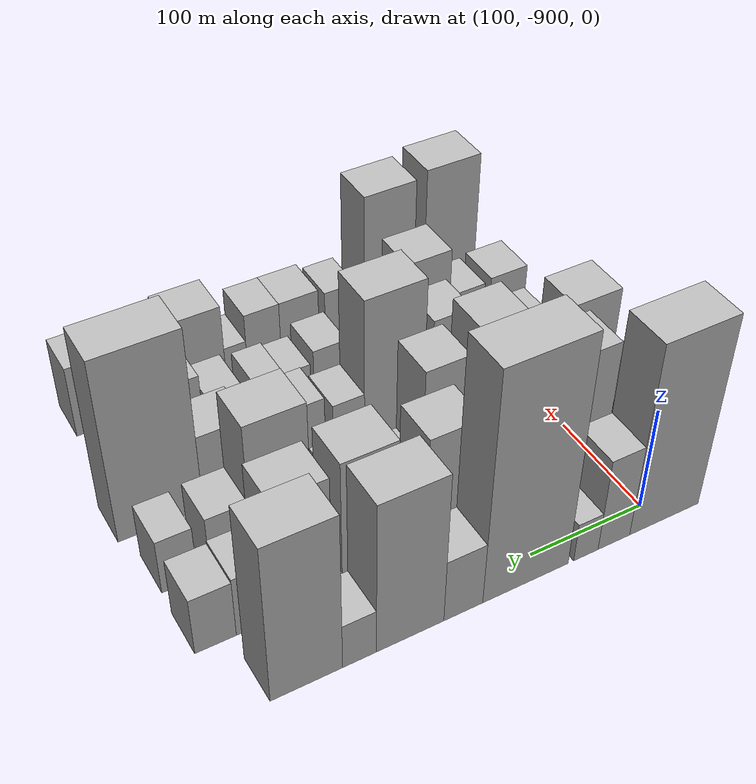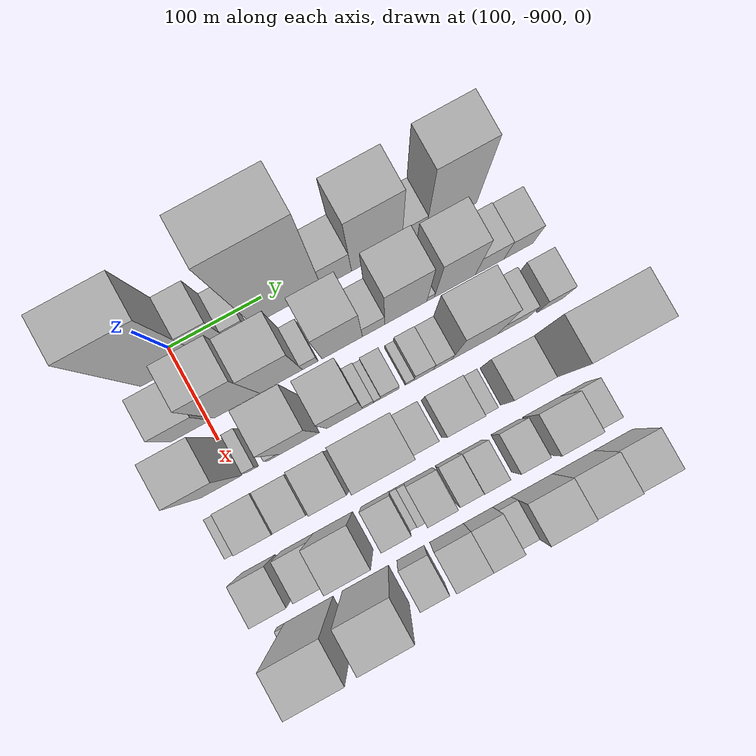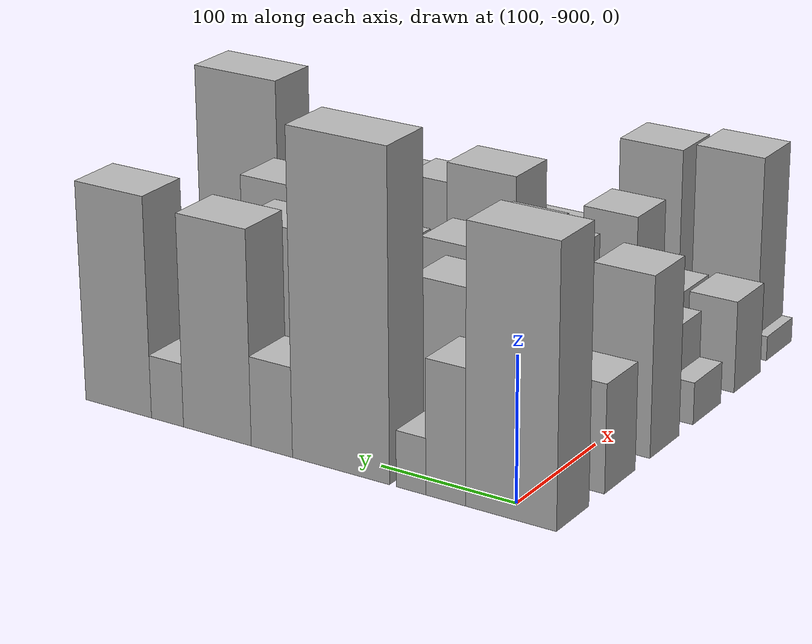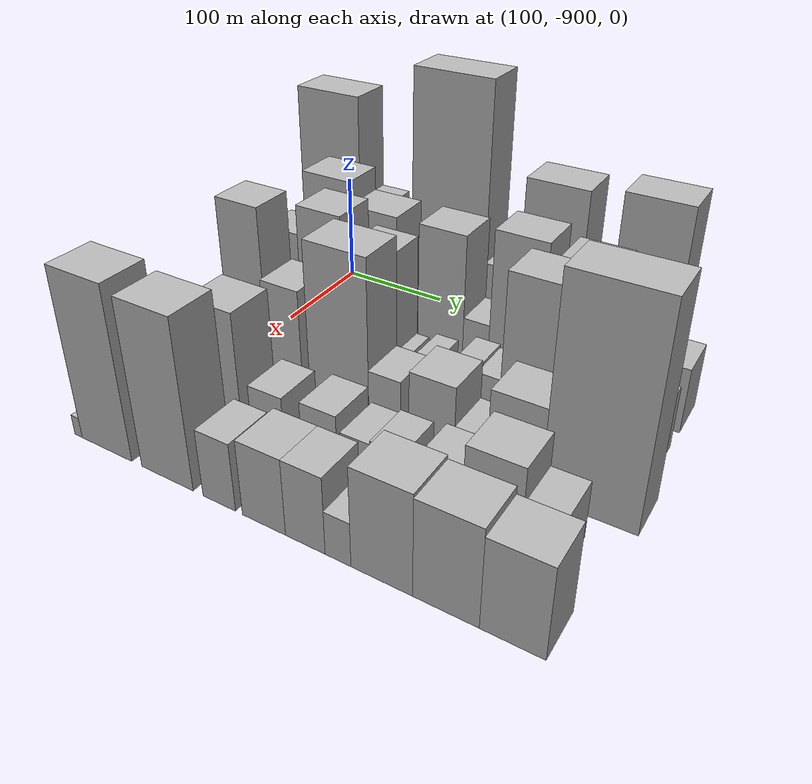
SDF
<sdf version="1.6">
 <world name="default">
  <model name="building_1">
   <static>1</static>
   <pose>100.0000 -907.5828 0 0.000000 0.000000 0.000000</pose>
   <link name="link">
    <pose>0 0 94.50 0 0 0</pose>
    <collision name="collision"><geometry><box><size>40.0000 64.8345 189.0000</size></box></geometry></collision>
    <visual name="visual">
     <cast_shadows>0</cast_shadows>
     <geometry><box><size>40.0000 64.8345 189.0000</size></box></geometry>
     <material>
      <script>
       <uri>model://HANNAS_wall/materials/scripts</uri>
       <uri>model://HANNAS_wall/materials/textures</uri>
       <name>vrc/HANNAS_wall</name>
      </script>
     </material>
    </visual>
   </link>
  </model>
  <model name="building_2">
   <static>1</static>
   <pose>100.0000 -860.6660 0 0.000000 0.000000 0.000000</pose>
   <link name="link">
    <pose>0 0 46.50 0 0 0</pose>
    <collision name="collision"><geometry><box><size>40.0000 28.9990 93.0000</size></box></geometry></collision>
    <visual name="visual">
     <cast_shadows>0</cast_shadows>
     <geometry><box><size>40.0000 28.9990 93.0000</size></box></geometry>
     <material>
      <script>
       <uri>model://HANNAS_wall/materials/scripts</uri>
       <uri>model://HANNAS_wall/materials/textures</uri>
       <name>vrc/HANNAS_wall</name>
      </script>
     </material>
    </visual>
   </link>
  </model>
  <model name="building_3">
   <static>1</static>
   <pose>100.0000 -835.2221 0 0.000000 0.000000 0.000000</pose>
   <link name="link">
    <pose>0 0 19.50 0 0 0</pose>
    <collision name="collision"><geometry><box><size>40.0000 21.8888 39.0000</size></box></geometry></collision>
    <visual name="visual">
     <cast_shadows>0</cast_shadows>
     <geometry><box><size>40.0000 21.8888 39.0000</size></box></geometry>
     <material>
      <script>
       <uri>model://HANNAS_wall/materials/scripts</uri>
       <uri>model://HANNAS_wall/materials/textures</uri>
       <name>vrc/HANNAS_wall</name>
      </script>
     </material>
    </visual>
   </link>
  </model>
  <model name="building_4">
   <static>1</static>
   <pose>100.0000 -782.2124 0 0.000000 0.000000 0.000000</pose>
   <link name="link">
    <pose>0 0 112.50 0 0 0</pose>
    <collision name="collision"><geometry><box><size>40.0000 74.1306 225.0000</size></box></geometry></collision>
    <visual name="visual">
     <cast_shadows>0</cast_shadows>
     <geometry><box><size>40.0000 74.1306 225.0000</size></box></geometry>
     <material>
      <script>
       <uri>model://HANNAS_wall/materials/scripts</uri>
       <uri>model://HANNAS_wall/materials/textures</uri>
       <name>vrc/HANNAS_wall</name>
      </script>
     </material>
    </visual>
   </link>
  </model>
  <model name="building_5">
   <static>1</static>
   <pose>100.0000 -728.9283 0 0.000000 0.000000 0.000000</pose>
   <link name="link">
    <pose>0 0 31.50 0 0 0</pose>
    <collision name="collision"><geometry><box><size>40.0000 32.4376 63.0000</size></box></geometry></collision>
    <visual name="visual">
     <cast_shadows>0</cast_shadows>
     <geometry><box><size>40.0000 32.4376 63.0000</size></box></geometry>
     <material>
      <script>
       <uri>model://HANNAS_wall/materials/scripts</uri>
       <uri>model://HANNAS_wall/materials/textures</uri>
       <name>vrc/HANNAS_wall</name>
      </script>
     </material>
    </visual>
   </link>
  </model>
  <model name="building_6">
   <static>1</static>
   <pose>100.0000 -685.4064 0 0.000000 0.000000 0.000000</pose>
   <link name="link">
    <pose>0 0 75.00 0 0 0</pose>
    <collision name="collision"><geometry><box><size>40.0000 54.6061 150.0000</size></box></geometry></collision>
    <visual name="visual">
     <cast_shadows>0</cast_shadows>
     <geometry><box><size>40.0000 54.6061 150.0000</size></box></geometry>
     <material>
      <script>
       <uri>model://HANNAS_wall/materials/scripts</uri>
       <uri>model://HANNAS_wall/materials/textures</uri>
       <name>vrc/HANNAS_wall</name>
      </script>
     </material>
    </visual>
   </link>
  </model>
  <model name="building_7">
   <static>1</static>
   <pose>100.0000 -644.9098 0 0.000000 0.000000 0.000000</pose>
   <link name="link">
    <pose>0 0 22.50 0 0 0</pose>
    <collision name="collision"><geometry><box><size>40.0000 26.3871 45.0000</size></box></geometry></collision>
    <visual name="visual">
     <cast_shadows>0</cast_shadows>
     <geometry><box><size>40.0000 26.3871 45.0000</size></box></geometry>
     <material>
      <script>
       <uri>model://HANNAS_wall/materials/scripts</uri>
       <uri>model://HANNAS_wall/materials/textures</uri>
       <name>vrc/HANNAS_wall</name>
      </script>
     </material>
    </visual>
   </link>
  </model>
  <model name="building_8">
   <static>1</static>
   <pose>100.0000 -604.1394 0 0.000000 0.000000 0.000000</pose>
   <link name="link">
    <pose>0 0 78.00 0 0 0</pose>
    <collision name="collision"><geometry><box><size>40.0000 55.1538 156.0000</size></box></geometry></collision>
    <visual name="visual">
     <cast_shadows>0</cast_shadows>
     <geometry><box><size>40.0000 55.1538 156.0000</size></box></geometry>
     <material>
      <script>
       <uri>model://HANNAS_wall/materials/scripts</uri>
       <uri>model://HANNAS_wall/materials/textures</uri>
       <name>vrc/HANNAS_wall</name>
      </script>
     </material>
    </visual>
   </link>
  </model>
  <model name="building_53">
   <static>1</static>
   <pose>160.0000 -918.6903 0 0.000000 0.000000 0.000000</pose>
   <link name="link">
    <pose>0 0 37.50 0 0 0</pose>
    <collision name="collision"><geometry><box><size>40.0000 42.6194 75.0000</size></box></geometry></collision>
    <visual name="visual">
     <cast_shadows>0</cast_shadows>
     <geometry><box><size>40.0000 42.6194 75.0000</size></box></geometry>
     <material>
      <script>
       <uri>model://HANNAS_wall/materials/scripts</uri>
       <uri>model://HANNAS_wall/materials/textures</uri>
       <name>vrc/HANNAS_wall</name>
      </script>
     </material>
    </visual>
   </link>
  </model>
  <model name="building_54">
   <static>1</static>
   <pose>160.0000 -869.1171 0 0.000000 0.000000 0.000000</pose>
   <link name="link">
    <pose>0 0 69.00 0 0 0</pose>
    <collision name="collision"><geometry><box><size>40.0000 48.5270 138.0000</size></box></geometry></collision>
    <visual name="visual">
     <cast_shadows>0</cast_shadows>
     <geometry><box><size>40.0000 48.5270 138.0000</size></box></geometry>
     <material>
      <script>
       <uri>model://HANNAS_wall/materials/scripts</uri>
       <uri>model://HANNAS_wall/materials/textures</uri>
       <name>vrc/HANNAS_wall</name>
      </script>
     </material>
    </visual>
   </link>
  </model>
  <model name="building_55">
   <static>1</static>
   <pose>160.0000 -821.7327 0 0.000000 0.000000 0.000000</pose>
   <link name="link">
    <pose>0 0 58.50 0 0 0</pose>
    <collision name="collision"><geometry><box><size>40.0000 46.2419 117.0000</size></box></geometry></collision>
    <visual name="visual">
     <cast_shadows>0</cast_shadows>
     <geometry><box><size>40.0000 46.2419 117.0000</size></box></geometry>
     <material>
      <script>
       <uri>model://HANNAS_wall/materials/scripts</uri>
       <uri>model://HANNAS_wall/materials/textures</uri>
       <name>vrc/HANNAS_wall</name>
      </script>
     </material>
    </visual>
   </link>
  </model>
  <model name="building_56">
   <static>1</static>
   <pose>160.0000 -790.0894 0 0.000000 0.000000 0.000000</pose>
   <link name="link">
    <pose>0 0 15.00 0 0 0</pose>
    <collision name="collision"><geometry><box><size>40.0000 17.0447 30.0000</size></box></geometry></collision>
    <visual name="visual">
     <cast_shadows>0</cast_shadows>
     <geometry><box><size>40.0000 17.0447 30.0000</size></box></geometry>
     <material>
      <script>
       <uri>model://HANNAS_wall/materials/scripts</uri>
       <uri>model://HANNAS_wall/materials/textures</uri>
       <name>vrc/HANNAS_wall</name>
      </script>
     </material>
    </visual>
   </link>
  </model>
  <model name="building_57">
   <static>1</static>
   <pose>160.0000 -755.6959 0 0.000000 0.000000 0.000000</pose>
   <link name="link">
    <pose>0 0 58.50 0 0 0</pose>
    <collision name="collision"><geometry><box><size>40.0000 43.7423 117.0000</size></box></geometry></collision>
    <visual name="visual">
     <cast_shadows>0</cast_shadows>
     <geometry><box><size>40.0000 43.7423 117.0000</size></box></geometry>
     <material>
      <script>
       <uri>model://HANNAS_wall/materials/scripts</uri>
       <uri>model://HANNAS_wall/materials/textures</uri>
       <name>vrc/HANNAS_wall</name>
      </script>
     </material>
    </visual>
   </link>
  </model>
  <model name="building_58">
   <static>1</static>
   <pose>160.0000 -721.9213 0 0.000000 0.000000 0.000000</pose>
   <link name="link">
    <pose>0 0 21.00 0 0 0</pose>
    <collision name="collision"><geometry><box><size>40.0000 23.8068 42.0000</size></box></geometry></collision>
    <visual name="visual">
     <cast_shadows>0</cast_shadows>
     <geometry><box><size>40.0000 23.8068 42.0000</size></box></geometry>
     <material>
      <script>
       <uri>model://HANNAS_wall/materials/scripts</uri>
       <uri>model://HANNAS_wall/materials/textures</uri>
       <name>vrc/HANNAS_wall</name>
      </script>
     </material>
    </visual>
   </link>
  </model>
  <model name="building_59">
   <static>1</static>
   <pose>160.0000 -687.0937 0 0.000000 0.000000 0.000000</pose>
   <link name="link">
    <pose>0 0 64.50 0 0 0</pose>
    <collision name="collision"><geometry><box><size>40.0000 45.8484 129.0000</size></box></geometry></collision>
    <visual name="visual">
     <cast_shadows>0</cast_shadows>
     <geometry><box><size>40.0000 45.8484 129.0000</size></box></geometry>
     <material>
      <script>
       <uri>model://HANNAS_wall/materials/scripts</uri>
       <uri>model://HANNAS_wall/materials/textures</uri>
       <name>vrc/HANNAS_wall</name>
      </script>
     </material>
    </visual>
   </link>
  </model>
  <model name="building_60">
   <static>1</static>
   <pose>160.0000 -660.0778 0 0.000000 0.000000 0.000000</pose>
   <link name="link">
    <pose>0 0 9.00 0 0 0</pose>
    <collision name="collision"><geometry><box><size>40.0000 8.1835 18.0000</size></box></geometry></collision>
    <visual name="visual">
     <cast_shadows>0</cast_shadows>
     <geometry><box><size>40.0000 8.1835 18.0000</size></box></geometry>
     <material>
      <script>
       <uri>model://HANNAS_wall/materials/scripts</uri>
       <uri>model://HANNAS_wall/materials/textures</uri>
       <name>vrc/HANNAS_wall</name>
      </script>
     </material>
    </visual>
   </link>
  </model>
  <model name="building_61">
   <static>1</static>
   <pose>160.0000 -633.7092 0 0.000000 0.000000 0.000000</pose>
   <link name="link">
    <pose>0 0 60.00 0 0 0</pose>
    <collision name="collision"><geometry><box><size>40.0000 44.5536 120.0000</size></box></geometry></collision>
    <visual name="visual">
     <cast_shadows>0</cast_shadows>
     <geometry><box><size>40.0000 44.5536 120.0000</size></box></geometry>
     <material>
      <script>
       <uri>model://HANNAS_wall/materials/scripts</uri>
       <uri>model://HANNAS_wall/materials/textures</uri>
       <name>vrc/HANNAS_wall</name>
      </script>
     </material>
    </visual>
   </link>
  </model>
  <model name="building_62">
   <static>1</static>
   <pose>160.0000 -595.7839 0 0.000000 0.000000 0.000000</pose>
   <link name="link">
    <pose>0 0 30.00 0 0 0</pose>
    <collision name="collision"><geometry><box><size>40.0000 31.2971 60.0000</size></box></geometry></collision>
    <visual name="visual">
     <cast_shadows>0</cast_shadows>
     <geometry><box><size>40.0000 31.2971 60.0000</size></box></geometry>
     <material>
      <script>
       <uri>model://HANNAS_wall/materials/scripts</uri>
       <uri>model://HANNAS_wall/materials/textures</uri>
       <name>vrc/HANNAS_wall</name>
      </script>
     </material>
    </visual>
   </link>
  </model>
  <model name="building_63">
   <static>1</static>
   <pose>160.0000 -564.2782 0 0.000000 0.000000 0.000000</pose>
   <link name="link">
    <pose>0 0 28.50 0 0 0</pose>
    <collision name="collision"><geometry><box><size>40.0000 31.7144 57.0000</size></box></geometry></collision>
    <visual name="visual">
     <cast_shadows>0</cast_shadows>
     <geometry><box><size>40.0000 31.7144 57.0000</size></box></geometry>
     <material>
      <script>
       <uri>model://HANNAS_wall/materials/scripts</uri>
       <uri>model://HANNAS_wall/materials/textures</uri>
       <name>vrc/HANNAS_wall</name>
      </script>
     </material>
    </visual>
   </link>
  </model>
  <model name="building_104">
   <static>1</static>
   <pose>220.0000 -917.9745 0 0.000000 0.000000 0.000000</pose>
   <link name="link">
    <pose>0 0 63.00 0 0 0</pose>
    <collision name="collision"><geometry><box><size>40.0000 44.0511 126.0000</size></box></geometry></collision>
    <visual name="visual">
     <cast_shadows>0</cast_shadows>
     <geometry><box><size>40.0000 44.0511 126.0000</size></box></geometry>
     <material>
      <script>
       <uri>model://HANNAS_wall/materials/scripts</uri>
       <uri>model://HANNAS_wall/materials/textures</uri>
       <name>vrc/HANNAS_wall</name>
      </script>
     </material>
    </visual>
   </link>
  </model>
  <model name="building_105">
   <static>1</static>
   <pose>220.0000 -884.6275 0 0.000000 0.000000 0.000000</pose>
   <link name="link">
    <pose>0 0 13.50 0 0 0</pose>
    <collision name="collision"><geometry><box><size>40.0000 12.6429 27.0000</size></box></geometry></collision>
    <visual name="visual">
     <cast_shadows>0</cast_shadows>
     <geometry><box><size>40.0000 12.6429 27.0000</size></box></geometry>
     <material>
      <script>
       <uri>model://HANNAS_wall/materials/scripts</uri>
       <uri>model://HANNAS_wall/materials/textures</uri>
       <name>vrc/HANNAS_wall</name>
      </script>
     </material>
    </visual>
   </link>
  </model>
  <model name="building_106">
   <static>1</static>
   <pose>220.0000 -861.7007 0 0.000000 0.000000 0.000000</pose>
   <link name="link">
    <pose>0 0 13.50 0 0 0</pose>
    <collision name="collision"><geometry><box><size>40.0000 13.2107 27.0000</size></box></geometry></collision>
    <visual name="visual">
     <cast_shadows>0</cast_shadows>
     <geometry><box><size>40.0000 13.2107 27.0000</size></box></geometry>
     <material>
      <script>
       <uri>model://HANNAS_wall/materials/scripts</uri>
       <uri>model://HANNAS_wall/materials/textures</uri>
       <name>vrc/HANNAS_wall</name>
      </script>
     </material>
    </visual>
   </link>
  </model>
  <model name="building_107">
   <static>1</static>
   <pose>220.0000 -834.1128 0 0.000000 0.000000 0.000000</pose>
   <link name="link">
    <pose>0 0 69.00 0 0 0</pose>
    <collision name="collision"><geometry><box><size>40.0000 41.9650 138.0000</size></box></geometry></collision>
    <visual name="visual">
     <cast_shadows>0</cast_shadows>
     <geometry><box><size>40.0000 41.9650 138.0000</size></box></geometry>
     <material>
      <script>
       <uri>model://HANNAS_wall/materials/scripts</uri>
       <uri>model://HANNAS_wall/materials/textures</uri>
       <name>vrc/HANNAS_wall</name>
      </script>
     </material>
    </visual>
   </link>
  </model>
  <model name="building_108">
   <static>1</static>
   <pose>220.0000 -785.8633 0 0.000000 0.000000 0.000000</pose>
   <link name="link">
    <pose>0 0 58.50 0 0 0</pose>
    <collision name="collision"><geometry><box><size>40.0000 38.5340 117.0000</size></box></geometry></collision>
    <visual name="visual">
     <cast_shadows>0</cast_shadows>
     <geometry><box><size>40.0000 38.5340 117.0000</size></box></geometry>
     <material>
      <script>
       <uri>model://HANNAS_wall/materials/scripts</uri>
       <uri>model://HANNAS_wall/materials/textures</uri>
       <name>vrc/HANNAS_wall</name>
      </script>
     </material>
    </visual>
   </link>
  </model>
  <model name="building_109">
   <static>1</static>
   <pose>220.0000 -760.6970 0 0.000000 0.000000 0.000000</pose>
   <link name="link">
    <pose>0 0 13.50 0 0 0</pose>
    <collision name="collision"><geometry><box><size>40.0000 11.7988 27.0000</size></box></geometry></collision>
    <visual name="visual">
     <cast_shadows>0</cast_shadows>
     <geometry><box><size>40.0000 11.7988 27.0000</size></box></geometry>
     <material>
      <script>
       <uri>model://HANNAS_wall/materials/scripts</uri>
       <uri>model://HANNAS_wall/materials/textures</uri>
       <name>vrc/HANNAS_wall</name>
      </script>
     </material>
    </visual>
   </link>
  </model>
  <model name="building_110">
   <static>1</static>
   <pose>220.0000 -751.0676 0 0.000000 0.000000 0.000000</pose>
   <link name="link">
    <pose>0 0 9.00 0 0 0</pose>
    <collision name="collision"><geometry><box><size>40.0000 7.4600 18.0000</size></box></geometry></collision>
    <visual name="visual">
     <cast_shadows>0</cast_shadows>
     <geometry><box><size>40.0000 7.4600 18.0000</size></box></geometry>
     <material>
      <script>
       <uri>model://HANNAS_wall/materials/scripts</uri>
       <uri>model://HANNAS_wall/materials/textures</uri>
       <name>vrc/HANNAS_wall</name>
      </script>
     </material>
    </visual>
   </link>
  </model>
  <model name="building_111">
   <static>1</static>
   <pose>220.0000 -737.5377 0 0.000000 0.000000 0.000000</pose>
   <link name="link">
    <pose>0 0 16.50 0 0 0</pose>
    <collision name="collision"><geometry><box><size>40.0000 19.5998 33.0000</size></box></geometry></collision>
    <visual name="visual">
     <cast_shadows>0</cast_shadows>
     <geometry><box><size>40.0000 19.5998 33.0000</size></box></geometry>
     <material>
      <script>
       <uri>model://HANNAS_wall/materials/scripts</uri>
       <uri>model://HANNAS_wall/materials/textures</uri>
       <name>vrc/HANNAS_wall</name>
      </script>
     </material>
    </visual>
   </link>
  </model>
  <model name="building_112">
   <static>1</static>
   <pose>220.0000 -716.1329 0 0.000000 0.000000 0.000000</pose>
   <link name="link">
    <pose>0 0 10.50 0 0 0</pose>
    <collision name="collision"><geometry><box><size>40.0000 9.2097 21.0000</size></box></geometry></collision>
    <visual name="visual">
     <cast_shadows>0</cast_shadows>
     <geometry><box><size>40.0000 9.2097 21.0000</size></box></geometry>
     <material>
      <script>
       <uri>model://HANNAS_wall/materials/scripts</uri>
       <uri>model://HANNAS_wall/materials/textures</uri>
       <name>vrc/HANNAS_wall</name>
      </script>
     </material>
    </visual>
   </link>
  </model>
  <model name="building_113">
   <static>1</static>
   <pose>220.0000 -701.0187 0 0.000000 0.000000 0.000000</pose>
   <link name="link">
    <pose>0 0 21.00 0 0 0</pose>
    <collision name="collision"><geometry><box><size>40.0000 21.0188 42.0000</size></box></geometry></collision>
    <visual name="visual">
     <cast_shadows>0</cast_shadows>
     <geometry><box><size>40.0000 21.0188 42.0000</size></box></geometry>
     <material>
      <script>
       <uri>model://HANNAS_wall/materials/scripts</uri>
       <uri>model://HANNAS_wall/materials/textures</uri>
       <name>vrc/HANNAS_wall</name>
      </script>
     </material>
    </visual>
   </link>
  </model>
  <model name="building_114">
   <static>1</static>
   <pose>220.0000 -680.6254 0 0.000000 0.000000 0.000000</pose>
   <link name="link">
    <pose>0 0 19.50 0 0 0</pose>
    <collision name="collision"><geometry><box><size>40.0000 19.7678 39.0000</size></box></geometry></collision>
    <visual name="visual">
     <cast_shadows>0</cast_shadows>
     <geometry><box><size>40.0000 19.7678 39.0000</size></box></geometry>
     <material>
      <script>
       <uri>model://HANNAS_wall/materials/scripts</uri>
       <uri>model://HANNAS_wall/materials/textures</uri>
       <name>vrc/HANNAS_wall</name>
      </script>
     </material>
    </visual>
   </link>
  </model>
  <model name="building_115">
   <static>1</static>
   <pose>220.0000 -646.0178 0 0.000000 0.000000 0.000000</pose>
   <link name="link">
    <pose>0 0 66.00 0 0 0</pose>
    <collision name="collision"><geometry><box><size>40.0000 49.4474 132.0000</size></box></geometry></collision>
    <visual name="visual">
     <cast_shadows>0</cast_shadows>
     <geometry><box><size>40.0000 49.4474 132.0000</size></box></geometry>
     <material>
      <script>
       <uri>model://HANNAS_wall/materials/scripts</uri>
       <uri>model://HANNAS_wall/materials/textures</uri>
       <name>vrc/HANNAS_wall</name>
      </script>
     </material>
    </visual>
   </link>
  </model>
  <model name="building_116">
   <static>1</static>
   <pose>220.0000 -604.4667 0 0.000000 0.000000 0.000000</pose>
   <link name="link">
    <pose>0 0 28.50 0 0 0</pose>
    <collision name="collision"><geometry><box><size>40.0000 33.6547 57.0000</size></box></geometry></collision>
    <visual name="visual">
     <cast_shadows>0</cast_shadows>
     <geometry><box><size>40.0000 33.6547 57.0000</size></box></geometry>
     <material>
      <script>
       <uri>model://HANNAS_wall/materials/scripts</uri>
       <uri>model://HANNAS_wall/materials/textures</uri>
       <name>vrc/HANNAS_wall</name>
      </script>
     </material>
    </visual>
   </link>
  </model>
  <model name="building_117">
   <static>1</static>
   <pose>220.0000 -563.5869 0 0.000000 0.000000 0.000000</pose>
   <link name="link">
    <pose>0 0 27.00 0 0 0</pose>
    <collision name="collision"><geometry><box><size>40.0000 28.1050 54.0000</size></box></geometry></collision>
    <visual name="visual">
     <cast_shadows>0</cast_shadows>
     <geometry><box><size>40.0000 28.1050 54.0000</size></box></geometry>
     <material>
      <script>
       <uri>model://HANNAS_wall/materials/scripts</uri>
       <uri>model://HANNAS_wall/materials/textures</uri>
       <name>vrc/HANNAS_wall</name>
      </script>
     </material>
    </visual>
   </link>
  </model>
  <model name="building_164">
   <static>1</static>
   <pose>280.0000 -931.6743 0 0.000000 0.000000 0.000000</pose>
   <link name="link">
    <pose>0 0 15.00 0 0 0</pose>
    <collision name="collision"><geometry><box><size>40.0000 16.6513 30.0000</size></box></geometry></collision>
    <visual name="visual">
     <cast_shadows>0</cast_shadows>
     <geometry><box><size>40.0000 16.6513 30.0000</size></box></geometry>
     <material>
      <script>
       <uri>model://HANNAS_wall/materials/scripts</uri>
       <uri>model://HANNAS_wall/materials/textures</uri>
       <name>vrc/HANNAS_wall</name>
      </script>
     </material>
    </visual>
   </link>
  </model>
  <model name="building_165">
   <static>1</static>
   <pose>280.0000 -904.8822 0 0.000000 0.000000 0.000000</pose>
   <link name="link">
    <pose>0 0 31.50 0 0 0</pose>
    <collision name="collision"><geometry><box><size>40.0000 36.9330 63.0000</size></box></geometry></collision>
    <visual name="visual">
     <cast_shadows>0</cast_shadows>
     <geometry><box><size>40.0000 36.9330 63.0000</size></box></geometry>
     <material>
      <script>
       <uri>model://HANNAS_wall/materials/scripts</uri>
       <uri>model://HANNAS_wall/materials/textures</uri>
       <name>vrc/HANNAS_wall</name>
      </script>
     </material>
    </visual>
   </link>
  </model>
  <model name="building_166">
   <static>1</static>
   <pose>280.0000 -870.0142 0 0.000000 0.000000 0.000000</pose>
   <link name="link">
    <pose>0 0 28.50 0 0 0</pose>
    <collision name="collision"><geometry><box><size>40.0000 32.8030 57.0000</size></box></geometry></collision>
    <visual name="visual">
     <cast_shadows>0</cast_shadows>
     <geometry><box><size>40.0000 32.8030 57.0000</size></box></geometry>
     <material>
      <script>
       <uri>model://HANNAS_wall/materials/scripts</uri>
       <uri>model://HANNAS_wall/materials/textures</uri>
       <name>vrc/HANNAS_wall</name>
      </script>
     </material>
    </visual>
   </link>
  </model>
  <model name="building_167">
   <static>1</static>
   <pose>280.0000 -828.1411 0 0.000000 0.000000 0.000000</pose>
   <link name="link">
    <pose>0 0 51.00 0 0 0</pose>
    <collision name="collision"><geometry><box><size>40.0000 34.9433 102.0000</size></box></geometry></collision>
    <visual name="visual">
     <cast_shadows>0</cast_shadows>
     <geometry><box><size>40.0000 34.9433 102.0000</size></box></geometry>
     <material>
      <script>
       <uri>model://HANNAS_wall/materials/scripts</uri>
       <uri>model://HANNAS_wall/materials/textures</uri>
       <name>vrc/HANNAS_wall</name>
      </script>
     </material>
    </visual>
   </link>
  </model>
  <model name="building_168">
   <static>1</static>
   <pose>280.0000 -776.5563 0 0.000000 0.000000 0.000000</pose>
   <link name="link">
    <pose>0 0 73.50 0 0 0</pose>
    <collision name="collision"><geometry><box><size>40.0000 54.2263 147.0000</size></box></geometry></collision>
    <visual name="visual">
     <cast_shadows>0</cast_shadows>
     <geometry><box><size>40.0000 54.2263 147.0000</size></box></geometry>
     <material>
      <script>
       <uri>model://HANNAS_wall/materials/scripts</uri>
       <uri>model://HANNAS_wall/materials/textures</uri>
       <name>vrc/HANNAS_wall</name>
      </script>
     </material>
    </visual>
   </link>
  </model>
  <model name="building_169">
   <static>1</static>
   <pose>280.0000 -735.5401 0 0.000000 0.000000 0.000000</pose>
   <link name="link">
    <pose>0 0 27.00 0 0 0</pose>
    <collision name="collision"><geometry><box><size>40.0000 27.8060 54.0000</size></box></geometry></collision>
    <visual name="visual">
     <cast_shadows>0</cast_shadows>
     <geometry><box><size>40.0000 27.8060 54.0000</size></box></geometry>
     <material>
      <script>
       <uri>model://HANNAS_wall/materials/scripts</uri>
       <uri>model://HANNAS_wall/materials/textures</uri>
       <name>vrc/HANNAS_wall</name>
      </script>
     </material>
    </visual>
   </link>
  </model>
  <model name="building_170">
   <static>1</static>
   <pose>280.0000 -695.7461 0 0.000000 0.000000 0.000000</pose>
   <link name="link">
    <pose>0 0 33.00 0 0 0</pose>
    <collision name="collision"><geometry><box><size>40.0000 37.7820 66.0000</size></box></geometry></collision>
    <visual name="visual">
     <cast_shadows>0</cast_shadows>
     <geometry><box><size>40.0000 37.7820 66.0000</size></box></geometry>
     <material>
      <script>
       <uri>model://HANNAS_wall/materials/scripts</uri>
       <uri>model://HANNAS_wall/materials/textures</uri>
       <name>vrc/HANNAS_wall</name>
      </script>
     </material>
    </visual>
   </link>
  </model>
  <model name="building_171">
   <static>1</static>
   <pose>280.0000 -667.9135 0 0.000000 0.000000 0.000000</pose>
   <link name="link">
    <pose>0 0 16.50 0 0 0</pose>
    <collision name="collision"><geometry><box><size>40.0000 17.8832 33.0000</size></box></geometry></collision>
    <visual name="visual">
     <cast_shadows>0</cast_shadows>
     <geometry><box><size>40.0000 17.8832 33.0000</size></box></geometry>
     <material>
      <script>
       <uri>model://HANNAS_wall/materials/scripts</uri>
       <uri>model://HANNAS_wall/materials/textures</uri>
       <name>vrc/HANNAS_wall</name>
      </script>
     </material>
    </visual>
   </link>
  </model>
  <model name="building_172">
   <static>1</static>
   <pose>280.0000 -630.1483 0 0.000000 0.000000 0.000000</pose>
   <link name="link">
    <pose>0 0 37.50 0 0 0</pose>
    <collision name="collision"><geometry><box><size>40.0000 41.6473 75.0000</size></box></geometry></collision>
    <visual name="visual">
     <cast_shadows>0</cast_shadows>
     <geometry><box><size>40.0000 41.6473 75.0000</size></box></geometry>
     <material>
      <script>
       <uri>model://HANNAS_wall/materials/scripts</uri>
       <uri>model://HANNAS_wall/materials/textures</uri>
       <name>vrc/HANNAS_wall</name>
      </script>
     </material>
    </visual>
   </link>
  </model>
  <model name="building_173">
   <static>1</static>
   <pose>280.0000 -574.6473 0 0.000000 0.000000 0.000000</pose>
   <link name="link">
    <pose>0 0 90.00 0 0 0</pose>
    <collision name="collision"><geometry><box><size>40.0000 69.3547 180.0000</size></box></geometry></collision>
    <visual name="visual">
     <cast_shadows>0</cast_shadows>
     <geometry><box><size>40.0000 69.3547 180.0000</size></box></geometry>
     <material>
      <script>
       <uri>model://HANNAS_wall/materials/scripts</uri>
       <uri>model://HANNAS_wall/materials/textures</uri>
       <name>vrc/HANNAS_wall</name>
      </script>
     </material>
    </visual>
   </link>
  </model>
  <model name="building_214">
   <static>1</static>
   <pose>340.0000 -922.0507 0 0.000000 0.000000 0.000000</pose>
   <link name="link">
    <pose>0 0 33.00 0 0 0</pose>
    <collision name="collision"><geometry><box><size>40.0000 35.8985 66.0000</size></box></geometry></collision>
    <visual name="visual">
     <cast_shadows>0</cast_shadows>
     <geometry><box><size>40.0000 35.8985 66.0000</size></box></geometry>
     <material>
      <script>
       <uri>model://HANNAS_wall/materials/scripts</uri>
       <uri>model://HANNAS_wall/materials/textures</uri>
       <name>vrc/HANNAS_wall</name>
      </script>
     </material>
    </visual>
   </link>
  </model>
  <model name="building_215">
   <static>1</static>
   <pose>340.0000 -880.8085 0 0.000000 0.000000 0.000000</pose>
   <link name="link">
    <pose>0 0 31.50 0 0 0</pose>
    <collision name="collision"><geometry><box><size>40.0000 34.5861 63.0000</size></box></geometry></collision>
    <visual name="visual">
     <cast_shadows>0</cast_shadows>
     <geometry><box><size>40.0000 34.5861 63.0000</size></box></geometry>
     <material>
      <script>
       <uri>model://HANNAS_wall/materials/scripts</uri>
       <uri>model://HANNAS_wall/materials/textures</uri>
       <name>vrc/HANNAS_wall</name>
      </script>
     </material>
    </visual>
   </link>
  </model>
  <model name="building_216">
   <static>1</static>
   <pose>340.0000 -842.5607 0 0.000000 0.000000 0.000000</pose>
   <link name="link">
    <pose>0 0 55.50 0 0 0</pose>
    <collision name="collision"><geometry><box><size>40.0000 41.9094 111.0000</size></box></geometry></collision>
    <visual name="visual">
     <cast_shadows>0</cast_shadows>
     <geometry><box><size>40.0000 41.9094 111.0000</size></box></geometry>
     <material>
      <script>
       <uri>model://HANNAS_wall/materials/scripts</uri>
       <uri>model://HANNAS_wall/materials/textures</uri>
       <name>vrc/HANNAS_wall</name>
      </script>
     </material>
    </visual>
   </link>
  </model>
  <model name="building_217">
   <static>1</static>
   <pose>340.0000 -797.6345 0 0.000000 0.000000 0.000000</pose>
   <link name="link">
    <pose>0 0 27.00 0 0 0</pose>
    <collision name="collision"><geometry><box><size>40.0000 29.9430 54.0000</size></box></geometry></collision>
    <visual name="visual">
     <cast_shadows>0</cast_shadows>
     <geometry><box><size>40.0000 29.9430 54.0000</size></box></geometry>
     <material>
      <script>
       <uri>model://HANNAS_wall/materials/scripts</uri>
       <uri>model://HANNAS_wall/materials/textures</uri>
       <name>vrc/HANNAS_wall</name>
      </script>
     </material>
    </visual>
   </link>
  </model>
  <model name="building_218">
   <static>1</static>
   <pose>340.0000 -779.0095 0 0.000000 0.000000 0.000000</pose>
   <link name="link">
    <pose>0 0 7.50 0 0 0</pose>
    <collision name="collision"><geometry><box><size>40.0000 7.3070 15.0000</size></box></geometry></collision>
    <visual name="visual">
     <cast_shadows>0</cast_shadows>
     <geometry><box><size>40.0000 7.3070 15.0000</size></box></geometry>
     <material>
      <script>
       <uri>model://HANNAS_wall/materials/scripts</uri>
       <uri>model://HANNAS_wall/materials/textures</uri>
       <name>vrc/HANNAS_wall</name>
      </script>
     </material>
    </visual>
   </link>
  </model>
  <model name="building_219">
   <static>1</static>
   <pose>340.0000 -771.0931 0 0.000000 0.000000 0.000000</pose>
   <link name="link">
    <pose>0 0 10.50 0 0 0</pose>
    <collision name="collision"><geometry><box><size>40.0000 8.5259 21.0000</size></box></geometry></collision>
    <visual name="visual">
     <cast_shadows>0</cast_shadows>
     <geometry><box><size>40.0000 8.5259 21.0000</size></box></geometry>
     <material>
      <script>
       <uri>model://HANNAS_wall/materials/scripts</uri>
       <uri>model://HANNAS_wall/materials/textures</uri>
       <name>vrc/HANNAS_wall</name>
      </script>
     </material>
    </visual>
   </link>
  </model>
  <model name="building_220">
   <static>1</static>
   <pose>340.0000 -751.5130 0 0.000000 0.000000 0.000000</pose>
   <link name="link">
    <pose>0 0 28.50 0 0 0</pose>
    <collision name="collision"><geometry><box><size>40.0000 30.6343 57.0000</size></box></geometry></collision>
    <visual name="visual">
     <cast_shadows>0</cast_shadows>
     <geometry><box><size>40.0000 30.6343 57.0000</size></box></geometry>
     <material>
      <script>
       <uri>model://HANNAS_wall/materials/scripts</uri>
       <uri>model://HANNAS_wall/materials/textures</uri>
       <name>vrc/HANNAS_wall</name>
      </script>
     </material>
    </visual>
   </link>
  </model>
  <model name="building_221">
   <static>1</static>
   <pose>340.0000 -721.0747 0 0.000000 0.000000 0.000000</pose>
   <link name="link">
    <pose>0 0 22.50 0 0 0</pose>
    <collision name="collision"><geometry><box><size>40.0000 24.2421 45.0000</size></box></geometry></collision>
    <visual name="visual">
     <cast_shadows>0</cast_shadows>
     <geometry><box><size>40.0000 24.2421 45.0000</size></box></geometry>
     <material>
      <script>
       <uri>model://HANNAS_wall/materials/scripts</uri>
       <uri>model://HANNAS_wall/materials/textures</uri>
       <name>vrc/HANNAS_wall</name>
      </script>
     </material>
    </visual>
   </link>
  </model>
  <model name="building_222">
   <static>1</static>
   <pose>340.0000 -695.8557 0 0.000000 0.000000 0.000000</pose>
   <link name="link">
    <pose>0 0 24.00 0 0 0</pose>
    <collision name="collision"><geometry><box><size>40.0000 26.1960 48.0000</size></box></geometry></collision>
    <visual name="visual">
     <cast_shadows>0</cast_shadows>
     <geometry><box><size>40.0000 26.1960 48.0000</size></box></geometry>
     <material>
      <script>
       <uri>model://HANNAS_wall/materials/scripts</uri>
       <uri>model://HANNAS_wall/materials/textures</uri>
       <name>vrc/HANNAS_wall</name>
      </script>
     </material>
    </visual>
   </link>
  </model>
  <model name="building_223">
   <static>1</static>
   <pose>340.0000 -657.6925 0 0.000000 0.000000 0.000000</pose>
   <link name="link">
    <pose>0 0 25.50 0 0 0</pose>
    <collision name="collision"><geometry><box><size>40.0000 30.1302 51.0000</size></box></geometry></collision>
    <visual name="visual">
     <cast_shadows>0</cast_shadows>
     <geometry><box><size>40.0000 30.1302 51.0000</size></box></geometry>
     <material>
      <script>
       <uri>model://HANNAS_wall/materials/scripts</uri>
       <uri>model://HANNAS_wall/materials/textures</uri>
       <name>vrc/HANNAS_wall</name>
      </script>
     </material>
    </visual>
   </link>
  </model>
  <model name="building_224">
   <static>1</static>
   <pose>340.0000 -617.8479 0 0.000000 0.000000 0.000000</pose>
   <link name="link">
    <pose>0 0 37.50 0 0 0</pose>
    <collision name="collision"><geometry><box><size>40.0000 41.5591 75.0000</size></box></geometry></collision>
    <visual name="visual">
     <cast_shadows>0</cast_shadows>
     <geometry><box><size>40.0000 41.5591 75.0000</size></box></geometry>
     <material>
      <script>
       <uri>model://HANNAS_wall/materials/scripts</uri>
       <uri>model://HANNAS_wall/materials/textures</uri>
       <name>vrc/HANNAS_wall</name>
      </script>
     </material>
    </visual>
   </link>
  </model>
  <model name="building_225">
   <static>1</static>
   <pose>340.0000 -583.1769 0 0.000000 0.000000 0.000000</pose>
   <link name="link">
    <pose>0 0 24.00 0 0 0</pose>
    <collision name="collision"><geometry><box><size>40.0000 27.7828 48.0000</size></box></geometry></collision>
    <visual name="visual">
     <cast_shadows>0</cast_shadows>
     <geometry><box><size>40.0000 27.7828 48.0000</size></box></geometry>
     <material>
      <script>
       <uri>model://HANNAS_wall/materials/scripts</uri>
       <uri>model://HANNAS_wall/materials/textures</uri>
       <name>vrc/HANNAS_wall</name>
      </script>
     </material>
    </visual>
   </link>
  </model>
  <model name="building_273">
   <static>1</static>
   <pose>400.0000 -931.0784 0 0.000000 0.000000 0.000000</pose>
   <link name="link">
    <pose>0 0 9.00 0 0 0</pose>
    <collision name="collision"><geometry><box><size>40.0000 7.8431 18.0000</size></box></geometry></collision>
    <visual name="visual">
     <cast_shadows>0</cast_shadows>
     <geometry><box><size>40.0000 7.8431 18.0000</size></box></geometry>
     <material>
      <script>
       <uri>model://HANNAS_wall/materials/scripts</uri>
       <uri>model://HANNAS_wall/materials/textures</uri>
       <name>vrc/HANNAS_wall</name>
      </script>
     </material>
    </visual>
   </link>
  </model>
  <model name="building_274">
   <static>1</static>
   <pose>400.0000 -901.3238 0 0.000000 0.000000 0.000000</pose>
   <link name="link">
    <pose>0 0 73.50 0 0 0</pose>
    <collision name="collision"><geometry><box><size>40.0000 51.6662 147.0000</size></box></geometry></collision>
    <visual name="visual">
     <cast_shadows>0</cast_shadows>
     <geometry><box><size>40.0000 51.6662 147.0000</size></box></geometry>
     <material>
      <script>
       <uri>model://HANNAS_wall/materials/scripts</uri>
       <uri>model://HANNAS_wall/materials/textures</uri>
       <name>vrc/HANNAS_wall</name>
      </script>
     </material>
    </visual>
   </link>
  </model>
  <model name="building_275">
   <static>1</static>
   <pose>400.0000 -840.9078 0 0.000000 0.000000 0.000000</pose>
   <link name="link">
    <pose>0 0 70.50 0 0 0</pose>
    <collision name="collision"><geometry><box><size>40.0000 49.1656 141.0000</size></box></geometry></collision>
    <visual name="visual">
     <cast_shadows>0</cast_shadows>
     <geometry><box><size>40.0000 49.1656 141.0000</size></box></geometry>
     <material>
      <script>
       <uri>model://HANNAS_wall/materials/scripts</uri>
       <uri>model://HANNAS_wall/materials/textures</uri>
       <name>vrc/HANNAS_wall</name>
      </script>
     </material>
    </visual>
   </link>
  </model>
  <model name="building_276">
   <static>1</static>
   <pose>400.0000 -792.8101 0 0.000000 0.000000 0.000000</pose>
   <link name="link">
    <pose>0 0 28.50 0 0 0</pose>
    <collision name="collision"><geometry><box><size>40.0000 29.0299 57.0000</size></box></geometry></collision>
    <visual name="visual">
     <cast_shadows>0</cast_shadows>
     <geometry><box><size>40.0000 29.0299 57.0000</size></box></geometry>
     <material>
      <script>
       <uri>model://HANNAS_wall/materials/scripts</uri>
       <uri>model://HANNAS_wall/materials/textures</uri>
       <name>vrc/HANNAS_wall</name>
      </script>
     </material>
    </visual>
   </link>
  </model>
  <model name="building_277">
   <static>1</static>
   <pose>400.0000 -754.1535 0 0.000000 0.000000 0.000000</pose>
   <link name="link">
    <pose>0 0 31.50 0 0 0</pose>
    <collision name="collision"><geometry><box><size>40.0000 36.2833 63.0000</size></box></geometry></collision>
    <visual name="visual">
     <cast_shadows>0</cast_shadows>
     <geometry><box><size>40.0000 36.2833 63.0000</size></box></geometry>
     <material>
      <script>
       <uri>model://HANNAS_wall/materials/scripts</uri>
       <uri>model://HANNAS_wall/materials/textures</uri>
       <name>vrc/HANNAS_wall</name>
      </script>
     </material>
    </visual>
   </link>
  </model>
  <model name="building_278">
   <static>1</static>
   <pose>400.0000 -720.1936 0 0.000000 0.000000 0.000000</pose>
   <link name="link">
    <pose>0 0 31.50 0 0 0</pose>
    <collision name="collision"><geometry><box><size>40.0000 31.6365 63.0000</size></box></geometry></collision>
    <visual name="visual">
     <cast_shadows>0</cast_shadows>
     <geometry><box><size>40.0000 31.6365 63.0000</size></box></geometry>
     <material>
      <script>
       <uri>model://HANNAS_wall/materials/scripts</uri>
       <uri>model://HANNAS_wall/materials/textures</uri>
       <name>vrc/HANNAS_wall</name>
      </script>
     </material>
    </visual>
   </link>
  </model>
  <model name="building_279">
   <static>1</static>
   <pose>400.0000 -694.5015 0 0.000000 0.000000 0.000000</pose>
   <link name="link">
    <pose>0 0 18.00 0 0 0</pose>
    <collision name="collision"><geometry><box><size>40.0000 19.7476 36.0000</size></box></geometry></collision>
    <visual name="visual">
     <cast_shadows>0</cast_shadows>
     <geometry><box><size>40.0000 19.7476 36.0000</size></box></geometry>
     <material>
      <script>
       <uri>model://HANNAS_wall/materials/scripts</uri>
       <uri>model://HANNAS_wall/materials/textures</uri>
       <name>vrc/HANNAS_wall</name>
      </script>
     </material>
    </visual>
   </link>
  </model>
  <model name="building_280">
   <static>1</static>
   <pose>400.0000 -662.2465 0 0.000000 0.000000 0.000000</pose>
   <link name="link">
    <pose>0 0 40.50 0 0 0</pose>
    <collision name="collision"><geometry><box><size>40.0000 44.7625 81.0000</size></box></geometry></collision>
    <visual name="visual">
     <cast_shadows>0</cast_shadows>
     <geometry><box><size>40.0000 44.7625 81.0000</size></box></geometry>
     <material>
      <script>
       <uri>model://HANNAS_wall/materials/scripts</uri>
       <uri>model://HANNAS_wall/materials/textures</uri>
       <name>vrc/HANNAS_wall</name>
      </script>
     </material>
    </visual>
   </link>
  </model>
  <model name="building_281">
   <static>1</static>
   <pose>400.0000 -617.2828 0 0.000000 0.000000 0.000000</pose>
   <link name="link">
    <pose>0 0 39.00 0 0 0</pose>
    <collision name="collision"><geometry><box><size>40.0000 45.1649 78.0000</size></box></geometry></collision>
    <visual name="visual">
     <cast_shadows>0</cast_shadows>
     <geometry><box><size>40.0000 45.1649 78.0000</size></box></geometry>
     <material>
      <script>
       <uri>model://HANNAS_wall/materials/scripts</uri>
       <uri>model://HANNAS_wall/materials/textures</uri>
       <name>vrc/HANNAS_wall</name>
      </script>
     </material>
    </visual>
   </link>
  </model>
  <model name="building_282">
   <static>1</static>
   <pose>400.0000 -573.7139 0 0.000000 0.000000 0.000000</pose>
   <link name="link">
    <pose>0 0 36.00 0 0 0</pose>
    <collision name="collision"><geometry><box><size>40.0000 41.9731 72.0000</size></box></geometry></collision>
    <visual name="visual">
     <cast_shadows>0</cast_shadows>
     <geometry><box><size>40.0000 41.9731 72.0000</size></box></geometry>
     <material>
      <script>
       <uri>model://HANNAS_wall/materials/scripts</uri>
       <uri>model://HANNAS_wall/materials/textures</uri>
       <name>vrc/HANNAS_wall</name>
      </script>
     </material>
    </visual>
   </link>
  </model>
 </world>
</sdf>
